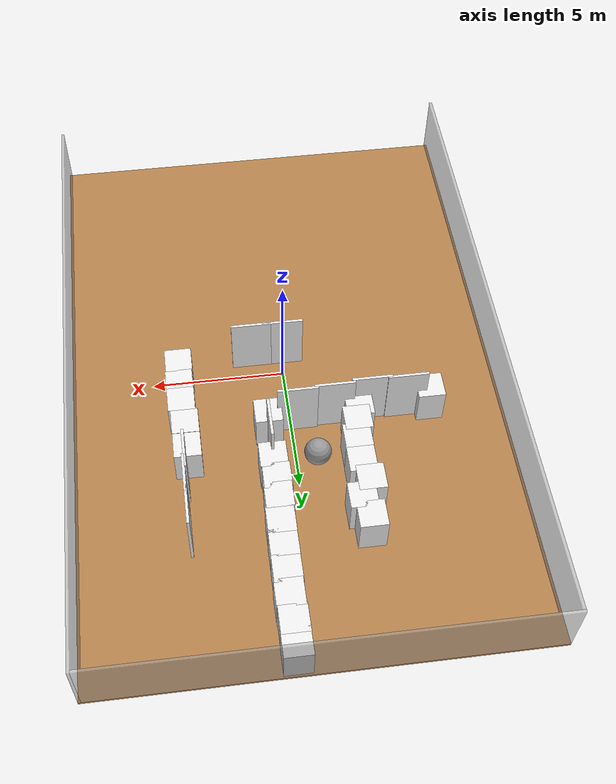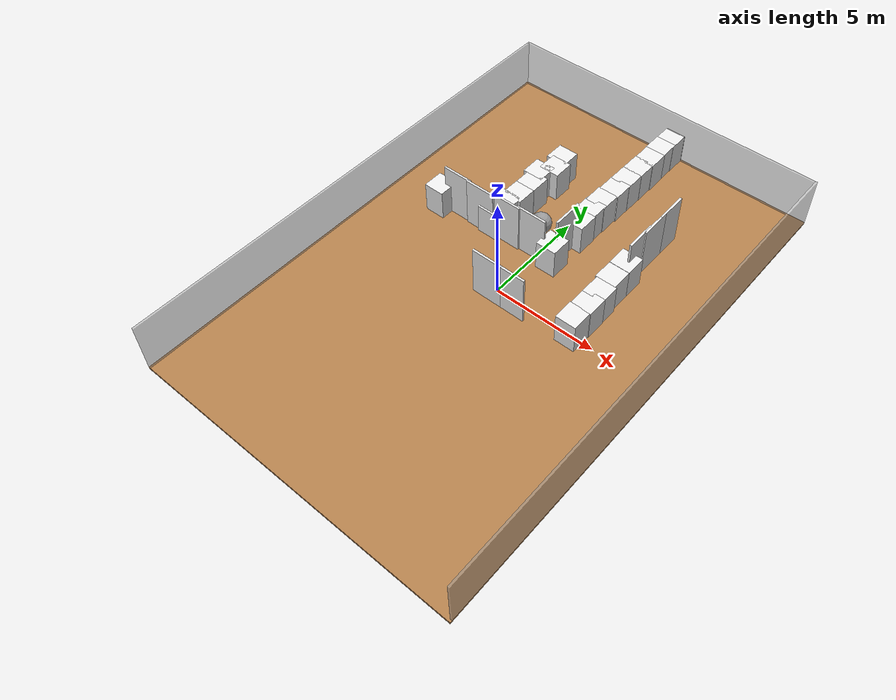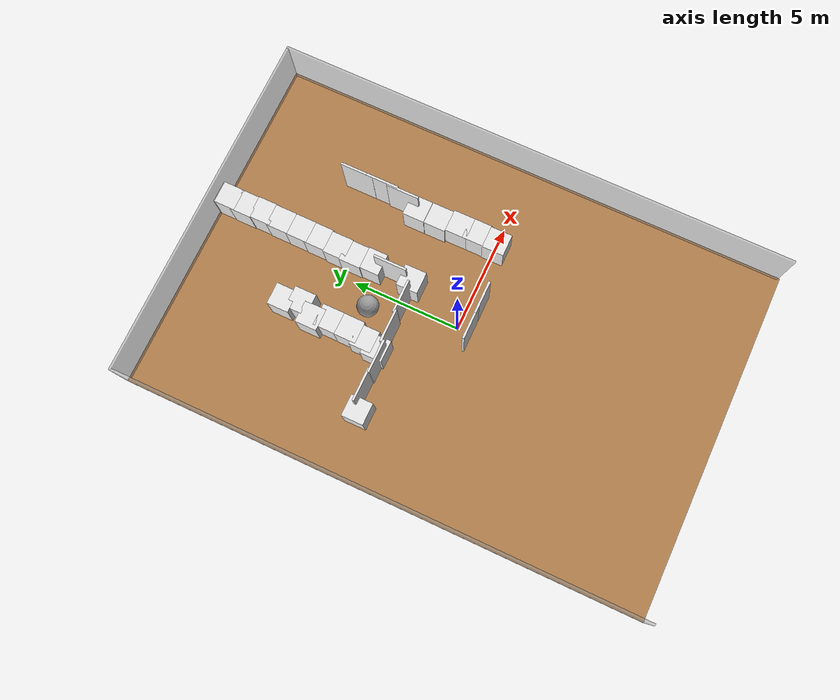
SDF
<sdf version="1.6">
 <world name="default">
  <model name="box_2">
   <pose>8.05 0.05 1.25 0 -0 0</pose>
   <static>1</static>
   <link name="link">
    <collision name="collision"><geometry><box><size>0.1 24.1 2.5</size></box></geometry></collision>
    <visual name="visual">
     <geometry><box><size>0.1 24.1 2.5</size></box></geometry>
     <material>
      <script><name>Gazebo/GreyTransparent</name><uri>file://media/materials/scripts/gazebo.material</uri></script>
     </material>
    </visual>
   </link>
  </model>
  <model name="box_3">
   <pose>-0.05 12.05 1.25 0 -0 0</pose>
   <static>1</static>
   <link name="link">
    <collision name="collision"><geometry><box><size>16.1 0.1 2.5</size></box></geometry></collision>
    <visual name="visual">
     <geometry><box><size>16.1 0.1 2.5</size></box></geometry>
     <material>
      <script><name>Gazebo/GreyTransparent</name><uri>file://media/materials/scripts/gazebo.material</uri></script>
     </material>
    </visual>
   </link>
  </model>
  <model name="box_4">
   <pose>-8.05 -0.05 1.25 0 -0 0</pose>
   <static>1</static>
   <link name="link">
    <collision name="collision"><geometry><box><size>0.1 24.1 2.5</size></box></geometry></collision>
    <visual name="visual">
     <geometry><box><size>0.1 24.1 2.5</size></box></geometry>
     <material>
      <script><name>Gazebo/GreyTransparent</name><uri>file://media/materials/scripts/gazebo.material</uri></script>
     </material>
    </visual>
   </link>
  </model>
  <model name="box_5">
   <pose>0 0 -0.05 0 -0 0</pose>
   <static>1</static>
   <link name="link">
    <collision name="collision"><geometry><box><size>16.2 24.2 0.1</size></box></geometry></collision>
    <visual name="visual">
     <geometry><box><size>16.2 24.2 0.1</size></box></geometry>
     <material>
      <script><name>Gazebo/WoodFloor</name><uri>file://media/materials/scripts/gazebo.material</uri></script>
     </material>
    </visual>
   </link>
  </model>
  <model name="box_8_clone_clone_3">
   <pose>1.13648 -0.604834 1.25 0 -0 0</pose>
   <static>1</static>
   <link name="link">
    <collision name="collision"><geometry><box><size>1.5 0.1 2.5</size></box></geometry></collision>
    <visual name="visual">
     <geometry><box><size>1.5 0.1 2.5</size></box></geometry>
     <material>
      <script><name>Gazebo/White</name><uri>file://media/materials/scripts/gazebo.material</uri></script>
     </material>
    </visual>
   </link>
  </model>
  <model name="box_8_clone_clone_4">
   <pose>-0.06939 -0.608032 1.25 0 -0 0</pose>
   <static>1</static>
   <link name="link">
    <collision name="collision"><geometry><box><size>1.5 0.1 2.5</size></box></geometry></collision>
    <visual name="visual">
     <geometry><box><size>1.5 0.1 2.5</size></box></geometry>
     <material>
      <script><name>Gazebo/White</name><uri>file://media/materials/scripts/gazebo.material</uri></script>
     </material>
    </visual>
   </link>
  </model>
  <model name="box_9_clone_clone_5">
   <pose>-2.21389 4.06737 0.75 0 -0 0</pose>
   <static>1</static>
   <link name="link">
    <collision name="collision"><geometry><box><size>1 1 1.5</size></box></geometry></collision>
    <visual name="visual">
     <geometry><box><size>1 1 1.5</size></box></geometry>
     <material>
      <script><name>Gazebo/White</name><uri>file://media/materials/scripts/gazebo.material</uri></script>
     </material>
    </visual>
   </link>
  </model>
  <model name="box_9_clone_clone_6">
   <pose>-2.20594 5.05311 0.75 0 -0 0</pose>
   <static>1</static>
   <link name="link">
    <collision name="collision"><geometry><box><size>1 1 1.5</size></box></geometry></collision>
    <visual name="visual">
     <geometry><box><size>1 1 1.5</size></box></geometry>
     <material>
      <script><name>Gazebo/White</name><uri>file://media/materials/scripts/gazebo.material</uri></script>
     </material>
    </visual>
   </link>
  </model>
  <model name="box_9_clone_clone_7">
   <pose>-2.40815 5.82285 0.75 0 -0 0</pose>
   <static>1</static>
   <link name="link">
    <collision name="collision"><geometry><box><size>1 1 1.5</size></box></geometry></collision>
    <visual name="visual">
     <geometry><box><size>1 1 1.5</size></box></geometry>
     <material>
      <script><name>Gazebo/White</name><uri>file://media/materials/scripts/gazebo.material</uri></script>
     </material>
    </visual>
   </link>
  </model>
  <model name="box_9_clone_clone_8">
   <pose>-2 6.49358 0.75 0 -0 0</pose>
   <static>1</static>
   <link name="link">
    <collision name="collision"><geometry><box><size>1 1 1.5</size></box></geometry></collision>
    <visual name="visual">
     <geometry><box><size>1 1 1.5</size></box></geometry>
     <material>
      <script><name>Gazebo/White</name><uri>file://media/materials/scripts/gazebo.material</uri></script>
     </material>
    </visual>
   </link>
  </model>
  <model name="box_9_clone_clone_9">
   <pose>-2.19565 7.27454 0.75 0 -0 0</pose>
   <static>1</static>
   <link name="link">
    <collision name="collision"><geometry><box><size>1 1 1.5</size></box></geometry></collision>
    <visual name="visual">
     <geometry><box><size>1 1 1.5</size></box></geometry>
     <material>
      <script><name>Gazebo/White</name><uri>file://media/materials/scripts/gazebo.material</uri></script>
     </material>
    </visual>
   </link>
  </model>
  <model name="box_9_clone_clone_5_clone">
   <pose>3.96534 -0.058836 0.75 0 -0 0</pose>
   <static>1</static>
   <link name="link">
    <collision name="collision"><geometry><box><size>1 1 1.5</size></box></geometry></collision>
    <visual name="visual">
     <geometry><box><size>1 1 1.5</size></box></geometry>
     <material>
      <script><name>Gazebo/White</name><uri>file://media/materials/scripts/gazebo.material</uri></script>
     </material>
    </visual>
   </link>
  </model>
  <model name="box_9_clone_clone_5_clone_0">
   <pose>3.99405 0.91295 0.75 0 -0 0</pose>
   <static>1</static>
   <link name="link">
    <collision name="collision"><geometry><box><size>1 1 1.5</size></box></geometry></collision>
    <visual name="visual">
     <geometry><box><size>1 1 1.5</size></box></geometry>
     <material>
      <script><name>Gazebo/White</name><uri>file://media/materials/scripts/gazebo.material</uri></script>
     </material>
    </visual>
   </link>
  </model>
  <model name="box_9_clone_clone_5_clone_1">
   <pose>3.98833 1.72238 0.75 0 -0 0</pose>
   <static>1</static>
   <link name="link">
    <collision name="collision"><geometry><box><size>1 1 1.5</size></box></geometry></collision>
    <visual name="visual">
     <geometry><box><size>1 1 1.5</size></box></geometry>
     <material>
      <script><name>Gazebo/White</name><uri>file://media/materials/scripts/gazebo.material</uri></script>
     </material>
    </visual>
   </link>
  </model>
  <model name="box_9_clone_clone_5_clone_2">
   <pose>3.91224 2.71803 0.75 0 -0 0</pose>
   <static>1</static>
   <link name="link">
    <collision name="collision"><geometry><box><size>1 1 1.5</size></box></geometry></collision>
    <visual name="visual">
     <geometry><box><size>1 1 1.5</size></box></geometry>
     <material>
      <script><name>Gazebo/White</name><uri>file://media/materials/scripts/gazebo.material</uri></script>
     </material>
    </visual>
   </link>
  </model>
  <model name="box_9_clone_clone_5_clone_3">
   <pose>3.90875 3.72901 0.75 0 -0 0</pose>
   <static>1</static>
   <link name="link">
    <collision name="collision"><geometry><box><size>1 1 1.5</size></box></geometry></collision>
    <visual name="visual">
     <geometry><box><size>1 1 1.5</size></box></geometry>
     <material>
      <script><name>Gazebo/White</name><uri>file://media/materials/scripts/gazebo.material</uri></script>
     </material>
    </visual>
   </link>
  </model>
  <model name="box_6_clone_clone_2">
   <pose>4.0167 4.46766 1.25 0 -0 0</pose>
   <static>1</static>
   <link name="link">
    <collision name="collision"><geometry><box><size>0.1 1.5 2.5</size></box></geometry></collision>
    <visual name="visual">
     <geometry><box><size>0.1 1.5 2.5</size></box></geometry>
     <material>
      <script><name>Gazebo/White</name><uri>file://media/materials/scripts/gazebo.material</uri></script>
     </material>
    </visual>
   </link>
  </model>
  <model name="box_6_clone_clone_3">
   <pose>4.07127 5.47003 1.25 0 -0 0</pose>
   <static>1</static>
   <link name="link">
    <collision name="collision"><geometry><box><size>0.1 1.5 2.5</size></box></geometry></collision>
    <visual name="visual">
     <geometry><box><size>0.1 1.5 2.5</size></box></geometry>
     <material>
      <script><name>Gazebo/White</name><uri>file://media/materials/scripts/gazebo.material</uri></script>
     </material>
    </visual>
   </link>
  </model>
  <model name="box_6_clone_clone_4">
   <pose>4.06892 6.67693 1.25 0 -0 0</pose>
   <static>1</static>
   <link name="link">
    <collision name="collision"><geometry><box><size>0.1 1.5 2.5</size></box></geometry></collision>
    <visual name="visual">
     <geometry><box><size>0.1 1.5 2.5</size></box></geometry>
     <material>
      <script><name>Gazebo/White</name><uri>file://media/materials/scripts/gazebo.material</uri></script>
     </material>
    </visual>
   </link>
  </model>
  <model name="box_9_clone_clone_9_clone">
   <pose>0.96273 11.5341 0.75 0 -0 0</pose>
   <static>1</static>
   <link name="link">
    <collision name="collision"><geometry><box><size>1 1 1.5</size></box></geometry></collision>
    <visual name="visual">
     <geometry><box><size>1 1 1.5</size></box></geometry>
     <material>
      <script><name>Gazebo/White</name><uri>file://media/materials/scripts/gazebo.material</uri></script>
     </material>
    </visual>
   </link>
  </model>
  <model name="box_9_clone_clone_9_clone_0">
   <pose>0.951303 10.7343 0.75 0 -0 0</pose>
   <static>1</static>
   <link name="link">
    <collision name="collision"><geometry><box><size>1 1 1.5</size></box></geometry></collision>
    <visual name="visual">
     <geometry><box><size>1 1 1.5</size></box></geometry>
     <material>
      <script><name>Gazebo/White</name><uri>file://media/materials/scripts/gazebo.material</uri></script>
     </material>
    </visual>
   </link>
  </model>
  <model name="box_9_clone_clone_9_clone_1">
   <pose>0.976499 9.79829 0.75 0 -0 0</pose>
   <static>1</static>
   <link name="link">
    <collision name="collision"><geometry><box><size>1 1 1.5</size></box></geometry></collision>
    <visual name="visual">
     <geometry><box><size>1 1 1.5</size></box></geometry>
     <material>
      <script><name>Gazebo/White</name><uri>file://media/materials/scripts/gazebo.material</uri></script>
     </material>
    </visual>
   </link>
  </model>
  <model name="box_9_clone_clone_9_clone_2">
   <pose>0.954322 8.93155 0.75 0 -0 0</pose>
   <static>1</static>
   <link name="link">
    <collision name="collision"><geometry><box><size>1 1 1.5</size></box></geometry></collision>
    <visual name="visual">
     <geometry><box><size>1 1 1.5</size></box></geometry>
     <material>
      <script><name>Gazebo/White</name><uri>file://media/materials/scripts/gazebo.material</uri></script>
     </material>
    </visual>
   </link>
  </model>
  <model name="box_9_clone_clone_9_clone_3">
   <pose>0.946415 7.9797 0.75 0 -0 0</pose>
   <static>1</static>
   <link name="link">
    <collision name="collision"><geometry><box><size>1 1 1.5</size></box></geometry></collision>
    <visual name="visual">
     <geometry><box><size>1 1 1.5</size></box></geometry>
     <material>
      <script><name>Gazebo/White</name><uri>file://media/materials/scripts/gazebo.material</uri></script>
     </material>
    </visual>
   </link>
  </model>
  <model name="box_9_clone_clone_9_clone_4">
   <pose>0.936307 7.10204 0.75 0 -0 0</pose>
   <static>1</static>
   <link name="link">
    <collision name="collision"><geometry><box><size>1 1 1.5</size></box></geometry></collision>
    <visual name="visual">
     <geometry><box><size>1 1 1.5</size></box></geometry>
     <material>
      <script><name>Gazebo/White</name><uri>file://media/materials/scripts/gazebo.material</uri></script>
     </material>
    </visual>
   </link>
  </model>
  <model name="box_9_clone_clone_9_clone_5">
   <pose>0.888259 6.13659 0.75 0 -0 0</pose>
   <static>1</static>
   <link name="link">
    <collision name="collision"><geometry><box><size>1 1 1.5</size></box></geometry></collision>
    <visual name="visual">
     <geometry><box><size>1 1 1.5</size></box></geometry>
     <material>
      <script><name>Gazebo/White</name><uri>file://media/materials/scripts/gazebo.material</uri></script>
     </material>
    </visual>
   </link>
  </model>
  <model name="box_9_clone_clone_9_clone_6">
   <pose>0.861538 5.35753 0.75 0 -0 0</pose>
   <static>1</static>
   <link name="link">
    <collision name="collision"><geometry><box><size>1 1 1.5</size></box></geometry></collision>
    <visual name="visual">
     <geometry><box><size>1 1 1.5</size></box></geometry>
     <material>
      <script><name>Gazebo/White</name><uri>file://media/materials/scripts/gazebo.material</uri></script>
     </material>
    </visual>
   </link>
  </model>
  <model name="box_9_clone_clone_9_clone_7">
   <pose>0.897234 4.48322 0.75 0 -0 0</pose>
   <static>1</static>
   <link name="link">
    <collision name="collision"><geometry><box><size>1 1 1.5</size></box></geometry></collision>
    <visual name="visual">
     <geometry><box><size>1 1 1.5</size></box></geometry>
     <material>
      <script><name>Gazebo/White</name><uri>file://media/materials/scripts/gazebo.material</uri></script>
     </material>
    </visual>
   </link>
  </model>
  <model name="box_6_clone_clone_5">
   <pose>0.889787 3.56461 1.25 0 -0 0</pose>
   <static>1</static>
   <link name="link">
    <collision name="collision"><geometry><box><size>0.1 1.5 2.5</size></box></geometry></collision>
    <visual name="visual">
     <geometry><box><size>0.1 1.5 2.5</size></box></geometry>
     <material>
      <script><name>Gazebo/White</name><uri>file://media/materials/scripts/gazebo.material</uri></script>
     </material>
    </visual>
   </link>
  </model>
  <model name="box_9_clone_clone_5_clone_4">
   <pose>0.8658 2.60984 0.75 0 -0 0</pose>
   <static>1</static>
   <link name="link">
    <collision name="collision"><geometry><box><size>1 1 1.5</size></box></geometry></collision>
    <visual name="visual">
     <geometry><box><size>1 1 1.5</size></box></geometry>
     <material>
      <script><name>Gazebo/White</name><uri>file://media/materials/scripts/gazebo.material</uri></script>
     </material>
    </visual>
   </link>
  </model>
  <model name="box_8_clone_clone_4_clone">
   <pose>-0.234697 2.5213 1.25 0 -0 0</pose>
   <static>1</static>
   <link name="link">
    <collision name="collision"><geometry><box><size>1.5 0.1 2.5</size></box></geometry></collision>
    <visual name="visual">
     <geometry><box><size>1.5 0.1 2.5</size></box></geometry>
     <material>
      <script><name>Gazebo/White</name><uri>file://media/materials/scripts/gazebo.material</uri></script>
     </material>
    </visual>
   </link>
  </model>
  <model name="box_8_clone_clone_4_clone_0">
   <pose>-1.6022 2.45178 1.25 0 -0 0</pose>
   <static>1</static>
   <link name="link">
    <collision name="collision"><geometry><box><size>1.5 0.1 2.5</size></box></geometry></collision>
    <visual name="visual">
     <geometry><box><size>1.5 0.1 2.5</size></box></geometry>
     <material>
      <script><name>Gazebo/White</name><uri>file://media/materials/scripts/gazebo.material</uri></script>
     </material>
    </visual>
   </link>
  </model>
  <model name="box_8_clone_clone_4_clone_1">
   <pose>-2.98043 2.34503 1.25 0 -0 0</pose>
   <static>1</static>
   <link name="link">
    <collision name="collision"><geometry><box><size>1.5 0.1 2.5</size></box></geometry></collision>
    <visual name="visual">
     <geometry><box><size>1.5 0.1 2.5</size></box></geometry>
     <material>
      <script><name>Gazebo/White</name><uri>file://media/materials/scripts/gazebo.material</uri></script>
     </material>
    </visual>
   </link>
  </model>
  <model name="box_8_clone_clone_4_clone_2">
   <pose>-4.30694 2.39293 1.25 0 -0 0</pose>
   <static>1</static>
   <link name="link">
    <collision name="collision"><geometry><box><size>1.5 0.1 2.5</size></box></geometry></collision>
    <visual name="visual">
     <geometry><box><size>1.5 0.1 2.5</size></box></geometry>
     <material>
      <script><name>Gazebo/White</name><uri>file://media/materials/scripts/gazebo.material</uri></script>
     </material>
    </visual>
   </link>
  </model>
  <model name="box_9_clone_clone_7_clone">
   <pose>-5.21616 2.23106 0.75 0 -0 0</pose>
   <static>1</static>
   <link name="link">
    <collision name="collision"><geometry><box><size>1 1 1.5</size></box></geometry></collision>
    <visual name="visual">
     <geometry><box><size>1 1 1.5</size></box></geometry>
     <material>
      <script><name>Gazebo/White</name><uri>file://media/materials/scripts/gazebo.material</uri></script>
     </material>
    </visual>
   </link>
  </model>
  <model name="box_9_clone_clone_5_clone_5">
   <pose>-2.33314 3.29946 0.75 0 -0 0</pose>
   <static>1</static>
   <link name="link">
    <collision name="collision"><geometry><box><size>1 1 1.5</size></box></geometry></collision>
    <visual name="visual">
     <geometry><box><size>1 1 1.5</size></box></geometry>
     <material>
      <script><name>Gazebo/White</name><uri>file://media/materials/scripts/gazebo.material</uri></script>
     </material>
    </visual>
   </link>
  </model>
  <model name="box_9_clone_clone_5_clone_6">
   <pose>-2.48571 2.70071 0.75 0 -0 0</pose>
   <static>1</static>
   <link name="link">
    <collision name="collision"><geometry><box><size>1 1 1.5</size></box></geometry></collision>
    <visual name="visual">
     <geometry><box><size>1 1 1.5</size></box></geometry>
     <material>
      <script><name>Gazebo/White</name><uri>file://media/materials/scripts/gazebo.material</uri></script>
     </material>
    </visual>
   </link>
  </model>
  <model name="unit_sphere">
   <pose>-0.804351 3.97468 0.5 0 -0 0</pose>
   <link name="link">
    <inertial>
     <mass>1</mass>
     <inertia><ixx>0.1</ixx><ixy>0</ixy><ixz>0</ixz><iyy>0.1</iyy><iyz>0</iyz><izz>0.1</izz></inertia>
    </inertial>
    <collision name="collision"><geometry><sphere><radius>0.5</radius></sphere></geometry></collision>
    <visual name="visual">
     <geometry><sphere><radius>0.5</radius></sphere></geometry>
     <material>
      <script><name>Gazebo/Grey</name><uri>file://media/materials/scripts/gazebo.material</uri></script>
     </material>
    </visual>
   </link>
  </model>
 </world>
</sdf>
